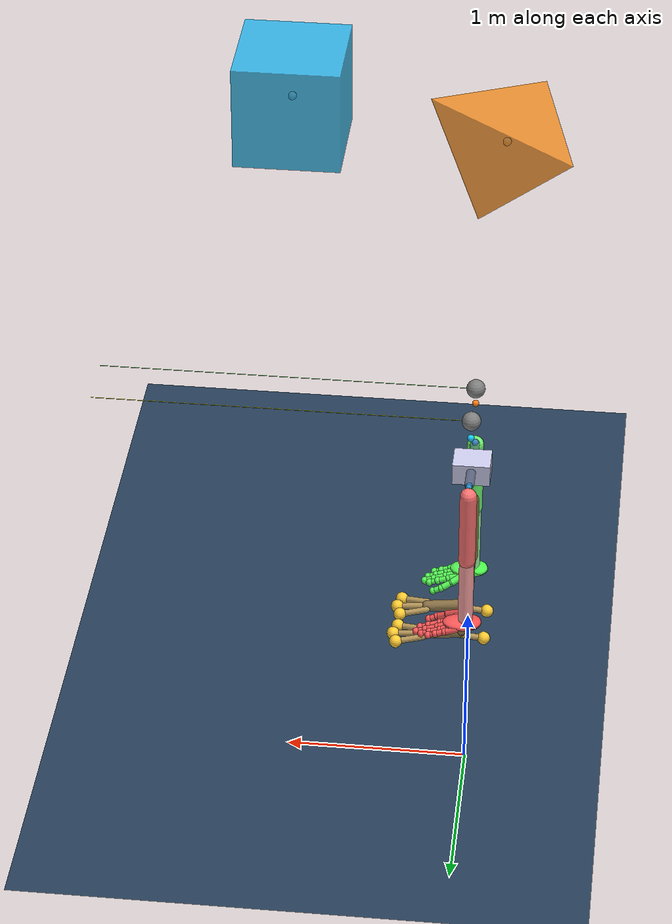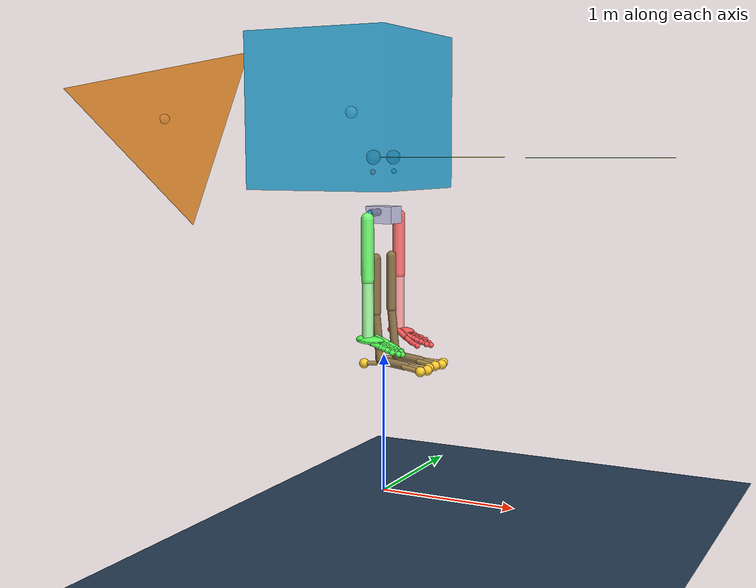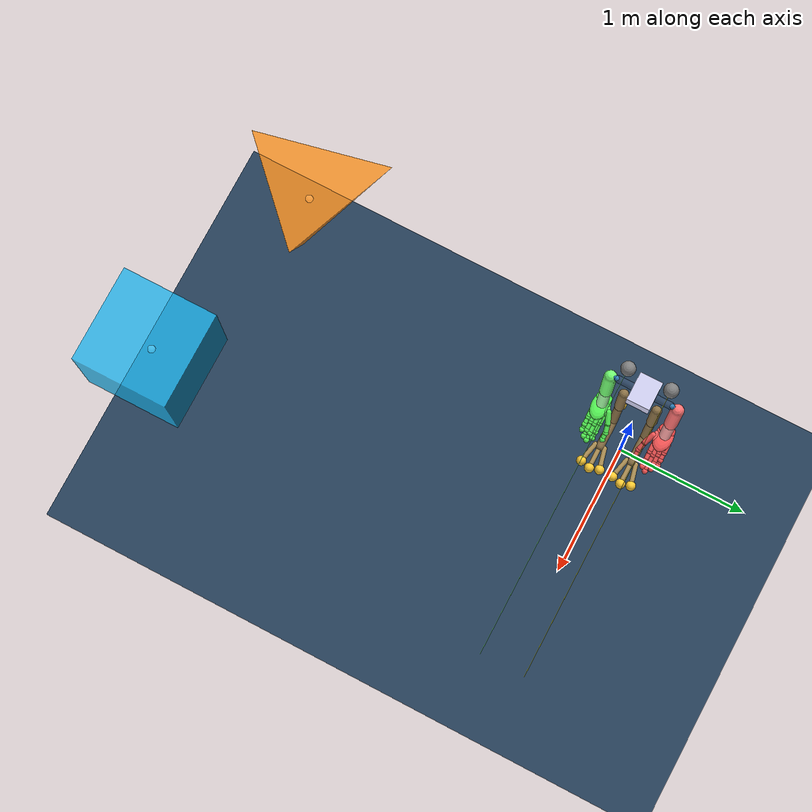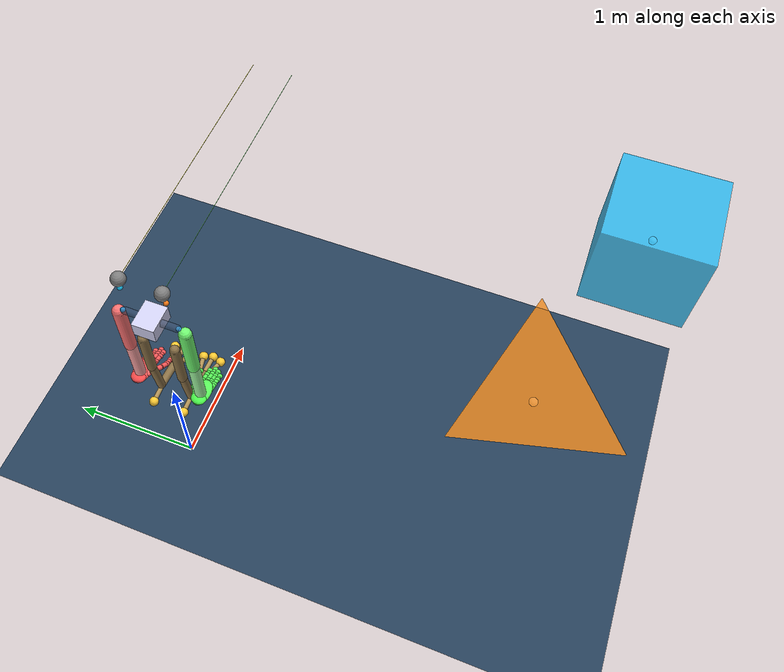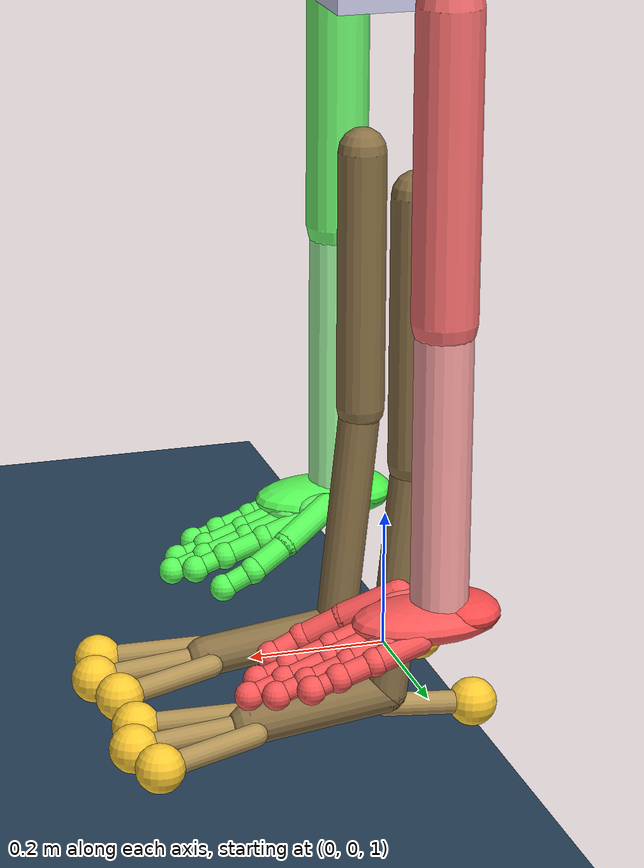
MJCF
<mujoco model="agent_scene">
  <!--include file="./common/skybox.xml"/-->
  <include file="./common/visual.xml"/>
  <include file="./common/materials.xml"/>

  <compiler angle="degree" meshdir="." texturedir="."/>
  <option timestep="0.01" gravity="0 0 -9.81" integrator="RK4"/>

  <asset>

    <!--texture name="grid" type="2d" builtin="checker" rgb1="0.2 0.2 0.2" rgb2="0.85 0.85 0.85" width="1024" height="1024"/-->
    <material name="mat_ground" texture="grid" texrepeat="40 40" reflectance="0.05" rgba="1 1 1 1"/>
    <material name="tetra_mocap_mat" rgba="0.95 0.55 0.12 0.85"/>
    <material name="cube_mocap_mat" rgba="0.12 0.72 0.95 0.82"/>
    <mesh name="tetrahedron_mesh"
          vertex="1 1 1  1 -1 -1  -1 1 -1  -1 -1 1"
          face="0 2 1  0 1 3  0 3 2  1 2 3"
          scale="0.32 0.32 0.32"/>

  </asset>

  <default>
    <geom friction="1.2 0.08 0.02" solimp="0.9 0.95 0.001" solref="0.012 1"/>
    <joint damping="0.5"/>

    <default class="visual">
        <geom material="metal" contype="0" conaffinity="0" group="2" />
    </default>
    <default class="no_visual">
        <geom group="4" />
    </default>
    <default class="collision">
        <geom contype="1" conaffinity="1" condim="3" margin="0.0015" solref="0.012 1" solimp="0.9 0.96 0.001" friction="1.2 0.08 0.02"/>
    </default>
  </default>

  <worldbody>
    <light pos="0 0 12" dir="0 0 -1"  directional="true" diffuse="0.95 0.95 0.95"/>
    <light pos="-4 -4 6" dir="1 1 -1" directional="true" diffuse="0.35 0.35 0.35"/>

    <geom name="ground" type="plane" size="20 20 0.1" material="mat_ground" class="collision"/>

    <body name="obj_tetrahedron_mocap" mocap="true" pos="0 -2.4 2.6" quat="0.92388 0.33141 0.19134 0.03813">
      <geom name="obj_tetrahedron" type="mesh" mesh="tetrahedron_mesh"
            material="tetra_mocap_mat" mass="0.8"
            contype="1" conaffinity="1" condim="3" margin="0.0015" solref="0.012 1" solimp="0.9 0.96 0.001" friction="1.2 0.08 0.02"/>
      <site name="obj_tetrahedron_center" pos="0 0 0" type="sphere" size="0.025" rgba="1 1 1 1"/>
    </body>

    <body name="obj_cube_mocap" mocap="true" pos="1.3 -2.8 2.6">
      <geom name="obj_mocap_cube" type="box" size="0.32 0.32 0.32"
            material="cube_mocap_mat" mass="0.8"
            contype="1" conaffinity="1" condim="3" margin="0.0015" solref="0.012 1" solimp="0.9 0.96 0.001" friction="1.2 0.08 0.02"/>
      <site name="obj_cube_center" pos="0 0 0" type="sphere" size="0.025" rgba="1 1 1 1"/>
    </body>
  </worldbody>

  <include file="agent.xml"/>

</mujoco>

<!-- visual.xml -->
<mujoco>
  <visual>
    <headlight ambient=".4 .4 .4" diffuse=".8 .8 .8" specular="0.1 0.1 0.1"/>
    <map znear="0.01" zfar="50.0"/>
    <quality shadowsize="2048"/>
  </visual>
</mujoco>

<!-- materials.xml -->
<!--
Common textures, colors and materials to be used throughout this suite. Some
materials such as xxx_highlight are activated on occurence of certain events,
for example receiving a positive reward.
-->
<mujoco>
  <asset>
    <texture name="grid" type="2d" builtin="checker" rgb1=".1 .2 .3" rgb2=".2 .3 .4" width="300" height="300" mark="edge" markrgb=".2 .3 .4"/>
    <material name="grid" texture="grid" texrepeat="1 1" texuniform="true" reflectance="0"/>
    <material name="self" rgba=".7 .5 .3 1"/>
    <material name="self_default" rgba=".7 .5 .3 1"/>
    <material name="self_highlight" rgba="0 .5 .3 1"/>
    <material name="effector" rgba=".7 .4 .2 1"/>
    <material name="effector_default" rgba=".7 .4 .2 1"/>
    <material name="effector_highlight" rgba="0 .5 .3 1"/>
    <material name="decoration" rgba=".3 .5 .7 1"/>
    <material name="eye" rgba="0 .2 1 1"/>
    <material name="target" rgba=".6 .3 .3 1"/>
    <material name="target_default" rgba=".6 .3 .3 1"/>
    <material name="target_highlight" rgba=".6 .3 .3 .4"/>
    <material name="site" rgba=".5 .5 .5 .3"/>

    <material name="metal"    rgba="0.7 0.7 0.7 1.0" />
    <material name="black"    rgba="0.1 0.1 0.1 1.0" />
    <material name="blue"     rgba="0.0 0.0 0.8 1.0" />
    <material name="green"    rgba="0.4 0.9 0.4 1.0" />
    <material name="gray"     rgba="0.7 0.7 0.7 1.0" />
    <material name="darkgray" rgba="0.3 0.3 0.3 1.0" />
    <material name="red"      rgba="0.8 0.0 0.0 1.0" />
    <material name="white"    rgba="1.0 1.0 1.0 1.0" />
    <material name="yellow"   rgba="0.8 0.8 0.0 1.0" />
    <material name="orange"   rgba="1.0 0.28 0.1 0.9"/>
    <material name="decor"    rgba="0.3 0.5 0.7 1.0"/>
  </asset>
</mujoco>

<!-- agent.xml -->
<mujoco model="agent">

  <worldbody>
    <body name="agent_rig" mocap="true" pos="0 0 2.0">
      <!--freejoint name="agent_rig_free"/-->
      <geom name="agent_rig_collision" type="box" size="0.18 0.12 0.10" mass="1.0" contype="1" conaffinity="1" condim="3" rgba="0.2 0.4 1.0 0.12" class="no_visual"/>
      <geom name="rig_core" type="box" pos="0 0 0" size="0.10 0.08 0.06" rgba="0.82 0.82 0.95 1" contype="0" conaffinity="0"/>

      <body name="agent_head" pos="0 0 0.2">
        <joint name="head_yaw"   type="hinge" axis="0 0 1" range="-45 45" damping="6.0" armature="0.10" frictionloss="0.05"/>
        <joint name="head_pitch" type="hinge" axis="0 1 0" range="-70 50" damping="6.0" armature="0.10" frictionloss="0.05"/>
        <joint name="head_roll"  type="hinge" axis="1 0 0" range="-70 70" damping="6.0" armature="0.10" frictionloss="0.05"/>

        <camera name="cam_left" pos="0 -0.15 0.2" xyaxes="0 -1 0 0 0 1" fovy="56.725318"/>
        <camera name="cam_right" pos="0 0.15 0.2" xyaxes="0 -1 0 0 0 1" fovy="56.725318"/>
        <geom name="obj_cam_left"  pos="0 -0.15 0.2" type="sphere" size="0.05"/>
        <geom name="obj_cam_right" pos="0  0.15 0.2" type="sphere" size="0.05"/>
        <geom name="luch_l" type="box" pos="1 -0.15 0.2" size="1 0.001 0.001" material="green" class="visual"/>
        <geom name="luch_r" type="box" pos="1  0.15 0.2" size="1 0.001 0.001" material="yellow" class="visual"/>

        <!-- Paired vestibular IMU sites: left/right inner-ear analog -->
        <site name="vestibular_left_imu_site"  pos="0.0 0.1600 0.1000" size="0.0180" type="sphere" rgba="0.1 0.8 1.0 1"/>
        <site name="vestibular_right_imu_site" pos="0.0 -0.1600 0.1000" size="0.0180" type="sphere" rgba="1.0 0.5 0.1 1"/>
      </body>

      <body name="agent_torso" pos="0 0 -0.06">
        <geom name="agent_torso_geom" type="box" size="0.20 0.13 0.18" mass="2.0" contype="1" conaffinity="1" condim="3" rgba="0.25 0.34 0.48 0.35" group="4"/>
        <geom name="agent_shoulder_bar" type="capsule" fromto="0 -0.19 0.08 0 0.19 0.08" size="0.025" mass="0.20" contype="1" conaffinity="1" condim="3" rgba="0.25 0.34 0.48 0.45"/>
        <site name="left_arm_mount_site" pos="0 -0.20 0.08" size="0.018" rgba="0.2 0.7 1 1"/>
        <site name="right_arm_mount_site" pos="0 0.20 0.08" size="0.018" rgba="0.2 0.7 1 1"/>

        <body name="left_hip_mount" pos="0 -0.1200 -0.2000">
          <joint name="left_hip_yaw" type="hinge" axis="0 0 1" range="-45 45" damping="6.0" armature="0.08" frictionloss="0.05"/>
          <joint name="left_hip_pitch" type="hinge" axis="0 1 0" range="-70 50" damping="7.0" armature="0.10" frictionloss="0.06"/>
          <!--geom name="left_hip_mount_geom" type="sphere" size="0.035" mass="0.42" contype="1" conaffinity="1" condim="3" rgba="0.55 0.45 0.28 1.0"/-->

          <body name="left_thigh" pos="0 0 -0.04">
            <geom name="left_thigh_geom" type="capsule" fromto="0 0 0 0 0 -0.3800" size="0.035" mass="0.42" contype="1" conaffinity="1" condim="3" rgba="0.55 0.45 0.28 1.0"/>

            <body name="left_shin" pos="0 0 -0.3800">
              <joint name="left_knee" type="hinge" axis="0 1 0" range="-105 -15" damping="7.0" armature="0.10" frictionloss="0.06"/>
              <geom name="left_shin_geom" type="capsule" fromto="0 0 0 0.035 0 -0.3400" size="0.03" mass="0.42" contype="1" conaffinity="1" condim="3" rgba="0.55 0.45 0.28 1.0"/>

              <body name="left_foot" pos="0.035 0 -0.3400">
                <joint name="left_ankle_pitch" type="hinge" axis="0 1 0" range="-45 55" damping="5.0" armature="0.07" frictionloss="0.04"/>
                <joint name="left_ankle_roll" type="hinge" axis="1 0 0" range="-25 25" damping="4.0" armature="0.05" frictionloss="0.035"/>
                <geom name="left_foot_geom" type="capsule" fromto="0 0 0 0.2000 0 -0.025" size="0.03" mass="0.13" contype="1" conaffinity="1" condim="3" rgba="0.55 0.45 0.28 1.0"/>

                <body name="left_toe_front_inner" pos="0.2000 -0.0350 -0.025">
                  <joint name="left_toe_front_inner_joint" type="hinge" axis="0 1 0" range="-20 65" damping="2.5" armature="0.035" frictionloss="0.02"/>
                  <geom name="left_toe_front_inner_geom" type="capsule" fromto="0 0 0 0.145 -0.0350 -0.015" size="0.017" mass="0.045" contype="1" conaffinity="1" condim="3" rgba="0.70 0.58 0.34 1.0"/>
                  <site name="left_toe_front_inner_tip" pos="0.145 -0.0350 -0.015" size="0.035" type="sphere" rgba="1 0.8 0.2 1"/>
                </body>

                <body name="left_toe_front_mid" pos="0.2000 0 -0.025">
                  <joint name="left_toe_front_mid_joint" type="hinge" axis="0 1 0" range="-20 65" damping="2.5" armature="0.035" frictionloss="0.02"/>
                  <geom name="left_toe_front_mid_geom" type="capsule" fromto="0 0 0 0.165 0 -0.015" size="0.017" mass="0.045" contype="1" conaffinity="1" condim="3" rgba="0.70 0.58 0.34 1.0"/>
                  <site name="left_toe_front_mid_tip" pos="0.165 0 -0.015" size="0.035" type="sphere" rgba="1 0.8 0.2 1"/>
                </body>

                <body name="left_toe_front_outer" pos="0.2000 0.0350 -0.025">
                  <joint name="left_toe_front_outer_joint" type="hinge" axis="0 1 0" range="-20 65" damping="2.5" armature="0.035" frictionloss="0.02"/>
                  <geom name="left_toe_front_outer_geom" type="capsule" fromto="0 0 0 0.145 0.0350 -0.015" size="0.017" mass="0.045" contype="1" conaffinity="1" condim="3" rgba="0.70 0.58 0.34 1.0"/>
                  <site name="left_toe_front_outer_tip" pos="0.145 0.0350 -0.015" size="0.035" type="sphere" rgba="1 0.8 0.2 1"/>
                </body>

                <body name="left_toe_rear" pos="0 0 -0.020">
                  <joint name="left_toe_rear_joint" type="hinge" axis="0 1 0" range="-45 45" damping="2.5" armature="0.035" frictionloss="0.02"/>
                  <geom name="left_toe_rear_geom" type="capsule" fromto="0 0 0 -0.130 0 -0.012" size="0.017" mass="0.045" contype="1" conaffinity="1" condim="3" rgba="0.70 0.58 0.34 1.0"/>
                  <site name="left_toe_rear_tip" pos="-0.130 0 -0.012" size="0.035" type="sphere" rgba="1 0.8 0.2 1"/>
                </body>
              </body>
            </body>
          </body>
        </body>

        <body name="right_hip_mount" pos="0 0.1200 -0.2000">
          <joint name="right_hip_yaw"   type="hinge" axis="0 0 1" range="-45 45" damping="6.0" armature="0.08" frictionloss="0.05"/>
          <joint name="right_hip_pitch" type="hinge" axis="0 1 0" range="-70 50" damping="7.0" armature="0.10" frictionloss="0.06"/>
          <!--geom name="right_hip_mount_geom" type="sphere" size="0.035" mass="0.42" contype="1" conaffinity="1" condim="3" rgba="0.55 0.45 0.28 1.0"/-->

          <body name="right_thigh" pos="0 0 -0.04">
            <geom name="right_thigh_geom" type="capsule" fromto="0 0 0 0 0 -0.3800" size="0.035" mass="0.42" contype="1" conaffinity="1" condim="3" rgba="0.55 0.45 0.28 1.0"/>

            <body name="right_shin" pos="0 0 -0.3800">
              <joint name="right_knee" type="hinge" axis="0 1 0" range="-105 -15" damping="7.0" armature="0.10" frictionloss="0.06"/>
              <geom name="right_shin_geom" type="capsule" fromto="0 0 0 0.035 0 -0.3400" size="0.03" mass="0.42" contype="1" conaffinity="1" condim="3" rgba="0.55 0.45 0.28 1.0"/>

              <body name="right_foot" pos="0.035 0 -0.3400">
                <joint name="right_ankle_pitch" type="hinge" axis="0 1 0" range="-45 55" damping="5.0" armature="0.07" frictionloss="0.04"/>
                <joint name="right_ankle_roll" type="hinge" axis="1 0 0" range="-25 25" damping="4.0" armature="0.05" frictionloss="0.035"/>
                <geom name="right_foot_geom" type="capsule" fromto="0 0 0 0.2000 0 -0.025" size="0.03" mass="0.13" contype="1" conaffinity="1" condim="3" rgba="0.55 0.45 0.28 1.0"/>

                <body name="right_toe_front_inner" pos="0.2000 0.0350 -0.025">
                  <joint name="right_toe_front_inner_joint" type="hinge" axis="0 1 0" range="-20 65" damping="2.5" armature="0.035" frictionloss="0.02"/>
                  <geom name="right_toe_front_inner_geom" type="capsule" fromto="0 0 0 0.145 0.0350 -0.015" size="0.017" mass="0.045" contype="1" conaffinity="1" condim="3" rgba="0.70 0.58 0.34 1.0"/>
                  <site name="right_toe_front_inner_tip" pos="0.145 0.0350 -0.015" size="0.035" type="sphere" rgba="1 0.8 0.2 1"/>
                </body>

                <body name="right_toe_front_mid" pos="0.2000 0 -0.025">
                  <joint name="right_toe_front_mid_joint" type="hinge" axis="0 1 0" range="-20 65" damping="2.5" armature="0.035" frictionloss="0.02"/>
                  <geom name="right_toe_front_mid_geom" type="capsule" fromto="0 0 0 0.165 0 -0.015" size="0.017" mass="0.045" contype="1" conaffinity="1" condim="3" rgba="0.70 0.58 0.34 1.0"/>
                  <site name="right_toe_front_mid_tip" pos="0.165 0 -0.015" size="0.035" type="sphere" rgba="1 0.8 0.2 1"/>
                </body>

                <body name="right_toe_front_outer" pos="0.2000 -0.0350 -0.025">
                  <joint name="right_toe_front_outer_joint" type="hinge" axis="0 1 0" range="-20 65" damping="2.5" armature="0.035" frictionloss="0.02"/>
                  <geom name="right_toe_front_outer_geom" type="capsule" fromto="0 0 0 0.145 -0.0350 -0.015" size="0.017" mass="0.045" contype="1" conaffinity="1" condim="3" rgba="0.70 0.58 0.34 1.0"/>
                  <site name="right_toe_front_outer_tip" pos="0.145 -0.0350 -0.015" size="0.035" type="sphere" rgba="1 0.8 0.2 1"/>
                </body>

                <body name="right_toe_rear" pos="0 0 -0.020">
                  <joint name="right_toe_rear_joint" type="hinge" axis="0 1 0" range="-45 45" damping="2.5" armature="0.035" frictionloss="0.02"/>
                  <geom name="right_toe_rear_geom" type="capsule" fromto="0 0 0 -0.130 0 -0.012" size="0.017" mass="0.045" contype="1" conaffinity="1" condim="3" rgba="0.70 0.58 0.34 1.0"/>
                  <site name="right_toe_rear_tip" pos="-0.130 0 -0.012" size="0.035" type="sphere" rgba="1 0.8 0.2 1"/>
                </body>
              </body>
            </body>
          </body>
        </body>
      </body>

      <body name="left_shoulder" pos="0.0 0.24 -0.02">
        <joint name="left_shoulder_yaw" type="hinge" axis="0 0 1"
               range="-85 85" damping="1.5" armature="0.02"/>
        <joint name="left_shoulder_pitch" type="hinge" axis="0 1 0"
               range="-70 70" damping="1.5" armature="0.02"/>

        <geom name="left_upper_arm_visual" type="capsule"
              fromto="0 0 0 0 0 -0.42" size="0.045"
              mass="0.25" rgba="1 0.45 0.45 1"
              contype="1" conaffinity="1"/>

        <body name="left_elbow" pos="0 0 -0.42">
          <joint name="left_elbow_hinge" type="hinge" axis="0 -1 0"
                 range="5 145" damping="1.2" armature="0.015"/>
          <geom name="left_forearm_visual" type="capsule"
                fromto="0 0 0 0 0 -0.40" size="0.04"
                mass="0.20" rgba="1 0.65 0.65 1"
                contype="1" conaffinity="1"/>

          <body name="left_hand_base" pos="0 0 -0.40">
            <joint name="left_palm_roll" type="hinge" axis="1 0 0" range="-35 35" damping="0.7" armature="0.006"/>
            <joint name="left_palm_pitch" type="hinge" axis="0 1 0" range="-35 35" damping="0.7" armature="0.006"/>
            <geom name="left_palm" type="ellipsoid" pos="0.018 0 -0.020" size="0.105 0.066 0.028" mass="0.110" rgba="1.0 0.35 0.35 1" contype="1" conaffinity="1" condim="3" margin="0.0015" solref="0.012 1" solimp="0.9 0.96 0.001" friction="1.2 0.08 0.02"/>
            <geom name="left_palm_heel" type="ellipsoid" pos="-0.035 0 -0.012" size="0.050 0.058 0.024" mass="0.030" rgba="0.98 0.30 0.30 1" contype="1" conaffinity="1" condim="3" margin="0.0015" solref="0.012 1" solimp="0.9 0.96 0.001" friction="1.2 0.08 0.02"/>
            <geom name="left_palm_knuckle_pad" type="ellipsoid" pos="0.074 0 -0.026" size="0.040 0.055 0.018" mass="0.022" rgba="1.0 0.42 0.42 1" contype="1" conaffinity="1" condim="3" margin="0.0015" solref="0.012 1" solimp="0.9 0.96 0.001" friction="1.2 0.08 0.02"/>
            <geom name="left_palm_thumb_pad" type="ellipsoid" pos="0.030 -0.050 -0.020" size="0.044 0.024 0.022" mass="0.018" rgba="1.0 0.40 0.40 1" contype="1" conaffinity="1" condim="3" margin="0.0015" solref="0.012 1" solimp="0.9 0.96 0.001" friction="1.2 0.08 0.02"/>
            <site name="left_hand_site" pos="0.045 0 -0.015" size="0.02" rgba="1.0 0.35 0.35 1"/>
            <site name="left_palm_center_site" pos="0.030 0 -0.040" size="0.02" rgba="1.0 0.35 0.35 1"/>

            <body name="left_thumb_mcp_body" pos="0.035 -0.070 -0.010">
              <joint name="left_thumb_mcp" type="hinge" axis="0 1 0" range="-20 90" damping="0.55" armature="0.003"/>
              <joint name="left_thumb_mcp_yaw" type="hinge" axis="0 0 1" range="-10 10" damping="0.55" armature="0.003"/>
              <geom name="left_thumb_proximal" type="capsule" fromto="0 0 0 0.070 -0.030 -0.039" size="0.020" mass="0.025" rgba="1.0 0.35 0.35 1" contype="1" conaffinity="1" condim="3" margin="0.0015" solref="0.012 1" solimp="0.9 0.96 0.001" friction="1.2 0.08 0.02"/>
              <site name="left_thumb_mcp_site" pos="0 0 0" size="0.005" rgba="1.0 0.35 0.35 1"/>
              <body name="left_thumb_pip_body" pos="0.070 -0.030 -0.039">
                <joint name="left_thumb_pip" type="hinge" axis="0 1 0" range="0 100" damping="0.45" armature="0.002"/>
                <geom name="left_thumb_middle" type="capsule" fromto="0 0 0 0.055 -0.015 -0.030" size="0.018" mass="0.020" rgba="1.0 0.35 0.35 1" contype="1" conaffinity="1" condim="3" margin="0.0015" solref="0.012 1" solimp="0.9 0.96 0.001" friction="1.2 0.08 0.02"/>
                <site name="left_thumb_pip_site" pos="0 0 0" size="0.02" rgba="1.0 0.35 0.35 1"/>
                <body name="left_thumb_dip_body" pos="0.055 -0.015 -0.030">
                  <joint name="left_thumb_dip" type="hinge" axis="0 1 0" range="0 80" damping="0.35" armature="0.001"/>
                  <geom name="left_thumb_distal" type="capsule" fromto="0 0 0 0.045 0 -0.022" size="0.016" mass="0.015" rgba="1.0 0.35 0.35 1" contype="1" conaffinity="1" condim="3" margin="0.0015" solref="0.012 1" solimp="0.9 0.96 0.001" friction="1.2 0.08 0.02"/>
                  <site name="left_thumb_dip_site" pos="0 0 0" size="0.02" rgba="1.0 0.35 0.35 1"/>
                  <site name="left_thumb_tip_site" pos="0.045 0 -0.022" size="0.02" rgba="1.0 0.35 0.35 1"/>
                </body>
              </body>
            </body>

            <body name="left_index_mcp_body" pos="0.060 -0.040 -0.035">
              <joint name="left_index_mcp" type="hinge" axis="0 1 0" range="-20 90" damping="0.55" armature="0.003"/>
              <joint name="left_index_mcp_yaw" type="hinge" axis="0 0 1" range="-10 10" damping="0.55" armature="0.003"/>
              <geom name="left_index_proximal" type="capsule" fromto="0 0 0 0.080 0 -0.028" size="0.018" mass="0.025" rgba="1.0 0.35 0.35 1" contype="1" conaffinity="1" condim="3" margin="0.0015" solref="0.012 1" solimp="0.9 0.96 0.001" friction="1.2 0.08 0.02"/>
              <site name="left_index_mcp_site" pos="0 0 0" size="0.005" rgba="1.0 0.35 0.35 1"/>
              <body name="left_index_pip_body" pos="0.080 0 -0.028">
                <joint name="left_index_pip" type="hinge" axis="0 1 0" range="0 100" damping="0.45" armature="0.002"/>
                <geom name="left_index_middle" type="capsule" fromto="0 0 0 0.060 0 -0.021" size="0.016" mass="0.020" rgba="1.0 0.35 0.35 1" contype="1" conaffinity="1" condim="3" margin="0.0015" solref="0.012 1" solimp="0.9 0.96 0.001" friction="1.2 0.08 0.02"/>
                <site name="left_index_pip_site" pos="0 0 0" size="0.02" rgba="1.0 0.35 0.35 1"/>
                <body name="left_index_dip_body" pos="0.060 0 -0.021">
                  <joint name="left_index_dip" type="hinge" axis="0 1 0" range="0 80" damping="0.35" armature="0.001"/>
                  <geom name="left_index_distal" type="capsule" fromto="0 0 0 0.045 0 -0.016" size="0.014" mass="0.015" rgba="1.0 0.35 0.35 1" contype="1" conaffinity="1" condim="3" margin="0.0015" solref="0.012 1" solimp="0.9 0.96 0.001" friction="1.2 0.08 0.02"/>
                  <site name="left_index_dip_site" pos="0 0 0" size="0.02" rgba="1.0 0.35 0.35 1"/>
                  <site name="left_index_tip_site" pos="0.045 0 -0.016" size="0.02" rgba="1.0 0.35 0.35 1"/>
                </body>
              </body>
            </body>

            <body name="left_middle_mcp_body" pos="0.065 -0.010 -0.038">
              <joint name="left_middle_mcp" type="hinge" axis="0 1 0" range="-20 90" damping="0.55" armature="0.003"/>
              <joint name="left_middle_mcp_yaw" type="hinge" axis="0 0 1" range="-10 10" damping="0.55" armature="0.003"/>
              <geom name="left_middle_proximal" type="capsule" fromto="0 0 0 0.085 0 -0.030" size="0.018" mass="0.025" rgba="1.0 0.35 0.35 1" contype="1" conaffinity="1" condim="3" margin="0.0015" solref="0.012 1" solimp="0.9 0.96 0.001" friction="1.2 0.08 0.02"/>
              <site name="left_middle_mcp_site" pos="0 0 0" size="0.005" rgba="1.0 0.35 0.35 1"/>
              <body name="left_middle_pip_body" pos="0.085 0 -0.030">
                <joint name="left_middle_pip" type="hinge" axis="0 1 0" range="0 100" damping="0.45" armature="0.002"/>
                <geom name="left_middle_middle" type="capsule" fromto="0 0 0 0.065 0 -0.023" size="0.016" mass="0.020" rgba="1.0 0.35 0.35 1" contype="1" conaffinity="1" condim="3" margin="0.0015" solref="0.012 1" solimp="0.9 0.96 0.001" friction="1.2 0.08 0.02"/>
                <site name="left_middle_pip_site" pos="0 0 0" size="0.02" rgba="1.0 0.35 0.35 1"/>
                <body name="left_middle_dip_body" pos="0.065 0 -0.023">
                  <joint name="left_middle_dip" type="hinge" axis="0 1 0" range="0 80" damping="0.35" armature="0.001"/>
                  <geom name="left_middle_distal" type="capsule" fromto="0 0 0 0.050 0 -0.017" size="0.014" mass="0.015" rgba="1.0 0.35 0.35 1" contype="1" conaffinity="1" condim="3" margin="0.0015" solref="0.012 1" solimp="0.9 0.96 0.001" friction="1.2 0.08 0.02"/>
                  <site name="left_middle_dip_site" pos="0 0 0" size="0.02" rgba="1.0 0.35 0.35 1"/>
                  <site name="left_middle_tip_site" pos="0.050 0 -0.017" size="0.02" rgba="1.0 0.35 0.35 1"/>
                </body>
              </body>
            </body>

            <body name="left_ring_mcp_body" pos="0.058 0.020 -0.036">
              <joint name="left_ring_mcp" type="hinge" axis="0 1 0" range="-20 90" damping="0.55" armature="0.003"/>
              <joint name="left_ring_mcp_yaw" type="hinge" axis="0 0 1" range="-10 10" damping="0.55" armature="0.003"/>
              <geom name="left_ring_proximal" type="capsule" fromto="0 0 0 0.076 0 -0.027" size="0.018" mass="0.025" rgba="1.0 0.35 0.35 1" contype="1" conaffinity="1" condim="3" margin="0.0015" solref="0.012 1" solimp="0.9 0.96 0.001" friction="1.2 0.08 0.02"/>
              <site name="left_ring_mcp_site" pos="0 0 0" size="0.005" rgba="1.0 0.35 0.35 1"/>
              <body name="left_ring_pip_body" pos="0.076 0 -0.027">
                <joint name="left_ring_pip" type="hinge" axis="0 1 0" range="0 100" damping="0.45" armature="0.002"/>
                <geom name="left_ring_middle" type="capsule" fromto="0 0 0 0.058 0 -0.020" size="0.016" mass="0.020" rgba="1.0 0.35 0.35 1" contype="1" conaffinity="1" condim="3" margin="0.0015" solref="0.012 1" solimp="0.9 0.96 0.001" friction="1.2 0.08 0.02"/>
                <site name="left_ring_pip_site" pos="0 0 0" size="0.02" rgba="1.0 0.35 0.35 1"/>
                <body name="left_ring_dip_body" pos="0.058 0 -0.020">
                  <joint name="left_ring_dip" type="hinge" axis="0 1 0" range="0 80" damping="0.35" armature="0.001"/>
                  <geom name="left_ring_distal" type="capsule" fromto="0 0 0 0.043 0 -0.015" size="0.014" mass="0.015" rgba="1.0 0.35 0.35 1" contype="1" conaffinity="1" condim="3" margin="0.0015" solref="0.012 1" solimp="0.9 0.96 0.001" friction="1.2 0.08 0.02"/>
                  <site name="left_ring_dip_site" pos="0 0 0" size="0.02" rgba="1.0 0.35 0.35 1"/>
                  <site name="left_ring_tip_site" pos="0.043 0 -0.015" size="0.02" rgba="1.0 0.35 0.35 1"/>
                </body>
              </body>
            </body>

            <body name="left_little_mcp_body" pos="0.045 0.050 -0.030">
              <joint name="left_little_mcp" type="hinge" axis="0 1 0" range="-20 90" damping="0.55" armature="0.003"/>
              <joint name="left_little_mcp_yaw" type="hinge" axis="0 0 1" range="-10 10" damping="0.55" armature="0.003"/>
              <geom name="left_little_proximal" type="capsule" fromto="0 0 0 0.062 0 -0.022" size="0.018" mass="0.025" rgba="1.0 0.35 0.35 1" contype="1" conaffinity="1" condim="3" margin="0.0015" solref="0.012 1" solimp="0.9 0.96 0.001" friction="1.2 0.08 0.02"/>
              <site name="left_little_mcp_site" pos="0 0 0" size="0.005" rgba="1.0 0.35 0.35 1"/>
              <body name="left_little_pip_body" pos="0.062 0 -0.022">
                <joint name="left_little_pip" type="hinge" axis="0 1 0" range="0 100" damping="0.45" armature="0.002"/>
                <geom name="left_little_middle" type="capsule" fromto="0 0 0 0.050 0 -0.017" size="0.016" mass="0.020" rgba="1.0 0.35 0.35 1" contype="1" conaffinity="1" condim="3" margin="0.0015" solref="0.012 1" solimp="0.9 0.96 0.001" friction="1.2 0.08 0.02"/>
                <site name="left_little_pip_site" pos="0 0 0" size="0.02" rgba="1.0 0.35 0.35 1"/>
                <body name="left_little_dip_body" pos="0.050 0 -0.017">
                  <joint name="left_little_dip" type="hinge" axis="0 1 0" range="0 80" damping="0.35" armature="0.001"/>
                  <geom name="left_little_distal" type="capsule" fromto="0 0 0 0.038 0 -0.013" size="0.014" mass="0.015" rgba="1.0 0.35 0.35 1" contype="1" conaffinity="1" condim="3" margin="0.0015" solref="0.012 1" solimp="0.9 0.96 0.001" friction="1.2 0.08 0.02"/>
                  <site name="left_little_dip_site" pos="0 0 0" size="0.02" rgba="1.0 0.35 0.35 1"/>
                  <site name="left_little_tip_site" pos="0.038 0 -0.013" size="0.02" rgba="1.0 0.35 0.35 1"/>
                </body>
              </body>
            </body>
          </body>

        </body>
      </body>

      <body name="right_shoulder" pos="0.0 -0.24 -0.02">
        <joint name="right_shoulder_yaw" type="hinge" axis="0 0 1"
               range="-85 85" damping="1.5" armature="0.02"/>
        <joint name="right_shoulder_pitch" type="hinge" axis="0 1 0"
               range="-70 70" damping="1.5" armature="0.02"/>

        <geom name="right_upper_arm_visual" type="capsule"
              fromto="0 0 0 0 0 -0.42" size="0.045"
              mass="0.25" rgba="0.45 1 0.45 1"
              contype="1" conaffinity="1"/>

        <body name="right_elbow" pos="0 0 -0.42">
          <joint name="right_elbow_hinge" type="hinge" axis="0 -1 0"
                 range="5 145" damping="1.2" armature="0.015"/>
          <geom name="right_forearm_visual" type="capsule"
                fromto="0 0 0 0 0 -0.40" size="0.04"
                mass="0.20" rgba="0.65 1 0.65 1"
                contype="1" conaffinity="1"/>

          <body name="right_hand_base" pos="0 0 -0.40">
            <joint name="right_palm_roll" type="hinge" axis="1 0 0" range="-35 35" damping="0.7" armature="0.006"/>
            <joint name="right_palm_pitch" type="hinge" axis="0 1 0" range="-35 35" damping="0.7" armature="0.006"/>
            <geom name="right_palm" type="ellipsoid" pos="0.018 0 -0.020" size="0.105 0.066 0.028" mass="0.110" rgba="0.35 1.0 0.35 1" contype="1" conaffinity="1" condim="3" margin="0.0015" solref="0.012 1" solimp="0.9 0.96 0.001" friction="1.2 0.08 0.02"/>
            <geom name="right_palm_heel" type="ellipsoid" pos="-0.035 0 -0.012" size="0.050 0.058 0.024" mass="0.030" rgba="0.30 0.98 0.30 1" contype="1" conaffinity="1" condim="3" margin="0.0015" solref="0.012 1" solimp="0.9 0.96 0.001" friction="1.2 0.08 0.02"/>
            <geom name="right_palm_knuckle_pad" type="ellipsoid" pos="0.074 0 -0.026" size="0.040 0.055 0.018" mass="0.022" rgba="0.42 1.0 0.42 1" contype="1" conaffinity="1" condim="3" margin="0.0015" solref="0.012 1" solimp="0.9 0.96 0.001" friction="1.2 0.08 0.02"/>
            <geom name="right_palm_thumb_pad" type="ellipsoid" pos="0.030 0.050 -0.020" size="0.044 0.024 0.022" mass="0.018" rgba="0.40 1.0 0.40 1" contype="1" conaffinity="1" condim="3" margin="0.0015" solref="0.012 1" solimp="0.9 0.96 0.001" friction="1.2 0.08 0.02"/>
            <site name="right_hand_site" pos="0.045 0 -0.015" size="0.02" rgba="0.35 1.0 0.35 1"/>
            <site name="right_palm_center_site" pos="0.030 0 -0.040" size="0.02" rgba="0.35 1.0 0.35 1"/>

            <body name="right_thumb_mcp_body" pos="0.035 0.070 -0.010">
              <joint name="right_thumb_mcp" type="hinge" axis="0 1 0" range="-20 90" damping="0.55" armature="0.003"/>
              <joint name="right_thumb_mcp_yaw" type="hinge" axis="0 0 1" range="-10 10" damping="0.55" armature="0.003"/>
              <geom name="right_thumb_proximal" type="capsule" fromto="0 0 0 0.070 0.030 -0.039" size="0.020" mass="0.025" rgba="0.35 1.0 0.35 1" contype="1" conaffinity="1" condim="3" margin="0.0015" solref="0.012 1" solimp="0.9 0.96 0.001" friction="1.2 0.08 0.02"/>
              <site name="right_thumb_mcp_site" pos="0 0 0" size="0.005" rgba="0.35 1.0 0.35 1"/>
              <body name="right_thumb_pip_body" pos="0.070 0.030 -0.039">
                <joint name="right_thumb_pip" type="hinge" axis="0 1 0" range="0 100" damping="0.45" armature="0.002"/>
                <geom name="right_thumb_middle" type="capsule" fromto="0 0 0 0.055 0.015 -0.030" size="0.018" mass="0.020" rgba="0.35 1.0 0.35 1" contype="1" conaffinity="1" condim="3" margin="0.0015" solref="0.012 1" solimp="0.9 0.96 0.001" friction="1.2 0.08 0.02"/>
                <site name="right_thumb_pip_site" pos="0 0 0" size="0.02" rgba="0.35 1.0 0.35 1"/>
                <body name="right_thumb_dip_body" pos="0.055 0.015 -0.030">
                  <joint name="right_thumb_dip" type="hinge" axis="0 1 0" range="0 80" damping="0.35" armature="0.001"/>
                  <geom name="right_thumb_distal" type="capsule" fromto="0 0 0 0.045 0 -0.022" size="0.016" mass="0.015" rgba="0.35 1.0 0.35 1" contype="1" conaffinity="1" condim="3" margin="0.0015" solref="0.012 1" solimp="0.9 0.96 0.001" friction="1.2 0.08 0.02"/>
                  <site name="right_thumb_dip_site" pos="0 0 0" size="0.02" rgba="0.35 1.0 0.35 1"/>
                  <site name="right_thumb_tip_site" pos="0.045 0 -0.022" size="0.02" rgba="0.35 1.0 0.35 1"/>
                </body>
              </body>
            </body>

            <body name="right_index_mcp_body" pos="0.045 0.050 -0.030">
              <joint name="right_index_mcp" type="hinge" axis="0 1 0" range="-20 90" damping="0.55" armature="0.003"/>
              <joint name="right_index_mcp_yaw" type="hinge" axis="0 0 1" range="-10 10" damping="0.55" armature="0.003"/>
              <geom name="right_index_proximal" type="capsule" fromto="0 0 0 0.080 0 -0.028" size="0.018" mass="0.025" rgba="0.35 1.0 0.35 1" contype="1" conaffinity="1" condim="3" margin="0.0015" solref="0.012 1" solimp="0.9 0.96 0.001" friction="1.2 0.08 0.02"/>
              <site name="right_index_mcp_site" pos="0 0 0" size="0.005" rgba="0.35 1.0 0.35 1"/>
              <body name="right_index_pip_body" pos="0.080 0 -0.028">
                <joint name="right_index_pip" type="hinge" axis="0 1 0" range="0 100" damping="0.45" armature="0.002"/>
                <geom name="right_index_middle" type="capsule" fromto="0 0 0 0.060 0 -0.021" size="0.016" mass="0.020" rgba="0.35 1.0 0.35 1" contype="1" conaffinity="1" condim="3" margin="0.0015" solref="0.012 1" solimp="0.9 0.96 0.001" friction="1.2 0.08 0.02"/>
                <site name="right_index_pip_site" pos="0 0 0" size="0.02" rgba="0.35 1.0 0.35 1"/>
                <body name="right_index_dip_body" pos="0.060 0 -0.021">
                  <joint name="right_index_dip" type="hinge" axis="0 1 0" range="0 80" damping="0.35" armature="0.001"/>
                  <geom name="right_index_distal" type="capsule" fromto="0 0 0 0.045 0 -0.016" size="0.014" mass="0.015" rgba="0.35 1.0 0.35 1" contype="1" conaffinity="1" condim="3" margin="0.0015" solref="0.012 1" solimp="0.9 0.96 0.001" friction="1.2 0.08 0.02"/>
                  <site name="right_index_dip_site" pos="0 0 0" size="0.02" rgba="0.35 1.0 0.35 1"/>
                  <site name="right_index_tip_site" pos="0.045 0 -0.016" size="0.02" rgba="0.35 1.0 0.35 1"/>
                </body>
              </body>
            </body>

            <body name="right_middle_mcp_body" pos="0.058 0.020 -0.036">
              <joint name="right_middle_mcp" type="hinge" axis="0 1 0" range="-20 90" damping="0.55" armature="0.003"/>
              <joint name="right_middle_mcp_yaw" type="hinge" axis="0 0 1" range="-10 10" damping="0.55" armature="0.003"/>
              <geom name="right_middle_proximal" type="capsule" fromto="0 0 0 0.085 0 -0.030" size="0.018" mass="0.025" rgba="0.35 1.0 0.35 1" contype="1" conaffinity="1" condim="3" margin="0.0015" solref="0.012 1" solimp="0.9 0.96 0.001" friction="1.2 0.08 0.02"/>
              <site name="right_middle_mcp_site" pos="0 0 0" size="0.005" rgba="0.35 1.0 0.35 1"/>
              <body name="right_middle_pip_body" pos="0.085 0 -0.030">
                <joint name="right_middle_pip" type="hinge" axis="0 1 0" range="0 100" damping="0.45" armature="0.002"/>
                <geom name="right_middle_middle" type="capsule" fromto="0 0 0 0.065 0 -0.023" size="0.016" mass="0.020" rgba="0.35 1.0 0.35 1" contype="1" conaffinity="1" condim="3" margin="0.0015" solref="0.012 1" solimp="0.9 0.96 0.001" friction="1.2 0.08 0.02"/>
                <site name="right_middle_pip_site" pos="0 0 0" size="0.02" rgba="0.35 1.0 0.35 1"/>
                <body name="right_middle_dip_body" pos="0.065 0 -0.023">
                  <joint name="right_middle_dip" type="hinge" axis="0 1 0" range="0 80" damping="0.35" armature="0.001"/>
                  <geom name="right_middle_distal" type="capsule" fromto="0 0 0 0.050 0 -0.017" size="0.014" mass="0.015" rgba="0.35 1.0 0.35 1" contype="1" conaffinity="1" condim="3" margin="0.0015" solref="0.012 1" solimp="0.9 0.96 0.001" friction="1.2 0.08 0.02"/>
                  <site name="right_middle_dip_site" pos="0 0 0" size="0.02" rgba="0.35 1.0 0.35 1"/>
                  <site name="right_middle_tip_site" pos="0.050 0 -0.017" size="0.02" rgba="0.35 1.0 0.35 1"/>
                </body>
              </body>
            </body>

            <body name="right_ring_mcp_body" pos="0.065 -0.010 -0.038">
              <joint name="right_ring_mcp" type="hinge" axis="0 1 0" range="-20 90" damping="0.55" armature="0.003"/>
              <joint name="right_ring_mcp_yaw" type="hinge" axis="0 0 1" range="-10 10" damping="0.55" armature="0.003"/>
              <geom name="right_ring_proximal" type="capsule" fromto="0 0 0 0.076 0 -0.027" size="0.018" mass="0.025" rgba="0.35 1.0 0.35 1" contype="1" conaffinity="1" condim="3" margin="0.0015" solref="0.012 1" solimp="0.9 0.96 0.001" friction="1.2 0.08 0.02"/>
              <site name="right_ring_mcp_site" pos="0 0 0" size="0.005" rgba="0.35 1.0 0.35 1"/>
              <body name="right_ring_pip_body" pos="0.076 0 -0.027">
                <joint name="right_ring_pip" type="hinge" axis="0 1 0" range="0 100" damping="0.45" armature="0.002"/>
                <geom name="right_ring_middle" type="capsule" fromto="0 0 0 0.058 0 -0.020" size="0.016" mass="0.020" rgba="0.35 1.0 0.35 1" contype="1" conaffinity="1" condim="3" margin="0.0015" solref="0.012 1" solimp="0.9 0.96 0.001" friction="1.2 0.08 0.02"/>
                <site name="right_ring_pip_site" pos="0 0 0" size="0.02" rgba="0.35 1.0 0.35 1"/>
                <body name="right_ring_dip_body" pos="0.058 0 -0.020">
                  <joint name="right_ring_dip" type="hinge" axis="0 1 0" range="0 80" damping="0.35" armature="0.001"/>
                  <geom name="right_ring_distal" type="capsule" fromto="0 0 0 0.043 0 -0.015" size="0.014" mass="0.015" rgba="0.35 1.0 0.35 1" contype="1" conaffinity="1" condim="3" margin="0.0015" solref="0.012 1" solimp="0.9 0.96 0.001" friction="1.2 0.08 0.02"/>
                  <site name="right_ring_dip_site" pos="0 0 0" size="0.02" rgba="0.35 1.0 0.35 1"/>
                  <site name="right_ring_tip_site" pos="0.043 0 -0.015" size="0.02" rgba="0.35 1.0 0.35 1"/>
                </body>
              </body>
            </body>

            <body name="right_little_mcp_body" pos="0.060 -0.040 -0.035">
              <joint name="right_little_mcp" type="hinge" axis="0 1 0" range="-20 90" damping="0.55" armature="0.003"/>
              <joint name="right_little_mcp_yaw" type="hinge" axis="0 0 1" range="-10 10" damping="0.55" armature="0.003"/>
              <geom name="right_little_proximal" type="capsule" fromto="0 0 0 0.062 0 -0.022" size="0.018" mass="0.025" rgba="0.35 1.0 0.35 1" contype="1" conaffinity="1" condim="3" margin="0.0015" solref="0.012 1" solimp="0.9 0.96 0.001" friction="1.2 0.08 0.02"/>
              <site name="right_little_mcp_site" pos="0 0 0" size="0.005" rgba="0.35 1.0 0.35 1"/>
              <body name="right_little_pip_body" pos="0.062 0 -0.022">
                <joint name="right_little_pip" type="hinge" axis="0 1 0" range="0 100" damping="0.45" armature="0.002"/>
                <geom name="right_little_middle" type="capsule" fromto="0 0 0 0.050 0 -0.017" size="0.016" mass="0.020" rgba="0.35 1.0 0.35 1" contype="1" conaffinity="1" condim="3" margin="0.0015" solref="0.012 1" solimp="0.9 0.96 0.001" friction="1.2 0.08 0.02"/>
                <site name="right_little_pip_site" pos="0 0 0" size="0.02" rgba="0.35 1.0 0.35 1"/>
                <body name="right_little_dip_body" pos="0.050 0 -0.017">
                  <joint name="right_little_dip" type="hinge" axis="0 1 0" range="0 80" damping="0.35" armature="0.001"/>
                  <geom name="right_little_distal" type="capsule" fromto="0 0 0 0.038 0 -0.013" size="0.014" mass="0.015" rgba="0.35 1.0 0.35 1" contype="1" conaffinity="1" condim="3" margin="0.0015" solref="0.012 1" solimp="0.9 0.96 0.001" friction="1.2 0.08 0.02"/>
                  <site name="right_little_dip_site" pos="0 0 0" size="0.02" rgba="0.35 1.0 0.35 1"/>
                  <site name="right_little_tip_site" pos="0.038 0 -0.013" size="0.02" rgba="0.35 1.0 0.35 1"/>
                </body>
              </body>
            </body>
          </body>

        </body>
      </body>
    </body>
  </worldbody>

  <sensor>
    <touch name="left_palm_touch" site="left_palm_center_site"/>
    <touch name="left_thumb_mcp_touch" site="left_thumb_mcp_site"/>
    <touch name="left_thumb_pip_touch" site="left_thumb_pip_site"/>
    <touch name="left_thumb_dip_touch" site="left_thumb_dip_site"/>
    <touch name="left_thumb_tip_touch" site="left_thumb_tip_site"/>
    <touch name="left_index_mcp_touch" site="left_index_mcp_site"/>
    <touch name="left_index_pip_touch" site="left_index_pip_site"/>
    <touch name="left_index_dip_touch" site="left_index_dip_site"/>
    <touch name="left_index_tip_touch" site="left_index_tip_site"/>
    <touch name="left_middle_mcp_touch" site="left_middle_mcp_site"/>
    <touch name="left_middle_pip_touch" site="left_middle_pip_site"/>
    <touch name="left_middle_dip_touch" site="left_middle_dip_site"/>
    <touch name="left_middle_tip_touch" site="left_middle_tip_site"/>
    <touch name="left_ring_mcp_touch" site="left_ring_mcp_site"/>
    <touch name="left_ring_pip_touch" site="left_ring_pip_site"/>
    <touch name="left_ring_dip_touch" site="left_ring_dip_site"/>
    <touch name="left_ring_tip_touch" site="left_ring_tip_site"/>
    <touch name="left_little_mcp_touch" site="left_little_mcp_site"/>
    <touch name="left_little_pip_touch" site="left_little_pip_site"/>
    <touch name="left_little_dip_touch" site="left_little_dip_site"/>
    <touch name="left_little_tip_touch" site="left_little_tip_site"/>
    <touch name="right_palm_touch" site="right_palm_center_site"/>
    <touch name="right_thumb_mcp_touch" site="right_thumb_mcp_site"/>
    <touch name="right_thumb_pip_touch" site="right_thumb_pip_site"/>
    <touch name="right_thumb_dip_touch" site="right_thumb_dip_site"/>
    <touch name="right_thumb_tip_touch" site="right_thumb_tip_site"/>
    <touch name="right_index_mcp_touch" site="right_index_mcp_site"/>
    <touch name="right_index_pip_touch" site="right_index_pip_site"/>
    <touch name="right_index_dip_touch" site="right_index_dip_site"/>
    <touch name="right_index_tip_touch" site="right_index_tip_site"/>
    <touch name="right_middle_mcp_touch" site="right_middle_mcp_site"/>
    <touch name="right_middle_pip_touch" site="right_middle_pip_site"/>
    <touch name="right_middle_dip_touch" site="right_middle_dip_site"/>
    <touch name="right_middle_tip_touch" site="right_middle_tip_site"/>
    <touch name="right_ring_mcp_touch" site="right_ring_mcp_site"/>
    <touch name="right_ring_pip_touch" site="right_ring_pip_site"/>
    <touch name="right_ring_dip_touch" site="right_ring_dip_site"/>
    <touch name="right_ring_tip_touch" site="right_ring_tip_site"/>
    <touch name="right_little_mcp_touch" site="right_little_mcp_site"/>
    <touch name="right_little_pip_touch" site="right_little_pip_site"/>
    <touch name="right_little_dip_touch" site="right_little_dip_site"/>
    <touch name="right_little_tip_touch" site="right_little_tip_site"/>
    <touch name="touch_left_toe_front_inner_tip"  site="left_toe_front_inner_tip"/>
    <touch name="touch_left_toe_front_mid_tip"    site="left_toe_front_mid_tip"/>
    <touch name="touch_left_toe_front_outer_tip"  site="left_toe_front_outer_tip"/>
    <touch name="touch_left_toe_rear_tip"         site="left_toe_rear_tip"/>
    <touch name="touch_right_toe_front_inner_tip" site="right_toe_front_inner_tip"/>
    <touch name="touch_right_toe_front_mid_tip"   site="right_toe_front_mid_tip"/>
    <touch name="touch_right_toe_front_outer_tip" site="right_toe_front_outer_tip"/>
    <touch name="touch_right_toe_rear_tip"        site="right_toe_rear_tip"/>
    <gyro name="vestibular_left_gyro" site="vestibular_left_imu_site"/>
    <accelerometer name="vestibular_left_accel" site="vestibular_left_imu_site"/>
    <gyro name="vestibular_right_gyro" site="vestibular_right_imu_site"/>
    <accelerometer name="vestibular_right_accel" site="vestibular_right_imu_site"/>
  </sensor>

  <actuator>
    <position name="act_head_yaw"   joint="head_yaw"   kp="60" ctrlrange="-1.48353 1.48353" forcerange="-12 12"/>
    <position name="act_head_pitch" joint="head_pitch" kp="60" ctrlrange="-1.22173 1.22173" forcerange="-12 12"/>
    <position name="act_head_roll"  joint="head_roll"  kp="60" ctrlrange="-1.22173 1.22173" forcerange="-12 12"/>

    <position name="act_left_shoulder_yaw" joint="left_shoulder_yaw" kp="60" ctrlrange="-1.48353 1.48353" forcerange="-120 120"/>
    <position name="act_left_shoulder_pitch" joint="left_shoulder_pitch" kp="60" ctrlrange="-1.22173 1.22173" forcerange="-120 120"/>
    <position name="act_left_elbow" joint="left_elbow_hinge" kp="55" ctrlrange="0.0872665 2.53073" forcerange="-100 100"/>

    <position name="act_right_shoulder_yaw" joint="right_shoulder_yaw" kp="60" ctrlrange="-1.48353 1.48353" forcerange="-120 120"/>
    <position name="act_right_shoulder_pitch" joint="right_shoulder_pitch" kp="60" ctrlrange="-1.22173 1.22173" forcerange="-120 120"/>
    <position name="act_right_elbow" joint="right_elbow_hinge" kp="55" ctrlrange="0.0872665 2.53073" forcerange="-100 100"/>

    <position name="act_left_palm_roll" joint="left_palm_roll" kp="80" ctrlrange="-0.610865 0.610865" forcerange="-50 50"/>
    <position name="act_left_palm_pitch" joint="left_palm_pitch" kp="80" ctrlrange="-0.610865 0.610865" forcerange="-50 50"/>
    <position name="act_left_thumb_mcp" joint="left_thumb_mcp" kp="45" ctrlrange="-0.349066 1.5708" forcerange="-25 25"/>
    <position name="act_left_thumb_mcp_yaw" joint="left_thumb_mcp_yaw" kp="45" ctrlrange="-0.349066 1.5708" forcerange="-25 25"/>
    <position name="act_left_thumb_pip" joint="left_thumb_pip" kp="38" ctrlrange="0 1.74533" forcerange="-22 22"/>
    <position name="act_left_thumb_dip" joint="left_thumb_dip" kp="30" ctrlrange="0 1.39626" forcerange="-18 18"/>
    <position name="act_left_index_mcp" joint="left_index_mcp" kp="45" ctrlrange="-0.349066 1.5708" forcerange="-25 25"/>
    <position name="act_left_index_mcp_yaw" joint="left_index_mcp_yaw" kp="45" ctrlrange="-0.349066 1.5708" forcerange="-25 25"/>
    <position name="act_left_index_pip" joint="left_index_pip" kp="38" ctrlrange="0 1.74533" forcerange="-22 22"/>
    <position name="act_left_index_dip" joint="left_index_dip" kp="30" ctrlrange="0 1.39626" forcerange="-18 18"/>
    <position name="act_left_middle_mcp" joint="left_middle_mcp" kp="45" ctrlrange="-0.349066 1.5708" forcerange="-25 25"/>
    <position name="act_left_middle_mcp_yaw" joint="left_middle_mcp_yaw" kp="45" ctrlrange="-0.349066 1.5708" forcerange="-25 25"/>
    <position name="act_left_middle_pip" joint="left_middle_pip" kp="38" ctrlrange="0 1.74533" forcerange="-22 22"/>
    <position name="act_left_middle_dip" joint="left_middle_dip" kp="30" ctrlrange="0 1.39626" forcerange="-18 18"/>
    <position name="act_left_ring_mcp" joint="left_ring_mcp" kp="45" ctrlrange="-0.349066 1.5708" forcerange="-25 25"/>
    <position name="act_left_ring_mcp_yaw" joint="left_ring_mcp_yaw" kp="45" ctrlrange="-0.349066 1.5708" forcerange="-25 25"/>
    <position name="act_left_ring_pip" joint="left_ring_pip" kp="38" ctrlrange="0 1.74533" forcerange="-22 22"/>
    <position name="act_left_ring_dip" joint="left_ring_dip" kp="30" ctrlrange="0 1.39626" forcerange="-18 18"/>
    <position name="act_left_little_mcp" joint="left_little_mcp" kp="45" ctrlrange="-0.349066 1.5708" forcerange="-25 25"/>
    <position name="act_left_little_mcp_yaw" joint="left_little_mcp_yaw" kp="45" ctrlrange="-0.349066 1.5708" forcerange="-25 25"/>
    <position name="act_left_little_pip" joint="left_little_pip" kp="38" ctrlrange="0 1.74533" forcerange="-22 22"/>
    <position name="act_left_little_dip" joint="left_little_dip" kp="30" ctrlrange="0 1.39626" forcerange="-18 18"/>

    <position name="act_right_palm_roll" joint="right_palm_roll" kp="80" ctrlrange="-0.610865 0.610865" forcerange="-50 50"/>
    <position name="act_right_palm_pitch" joint="right_palm_pitch" kp="80" ctrlrange="-0.610865 0.610865" forcerange="-50 50"/>
    <position name="act_right_thumb_mcp" joint="right_thumb_mcp" kp="45" ctrlrange="-0.349066 1.5708" forcerange="-25 25"/>
    <position name="act_right_thumb_mcp_yaw" joint="right_thumb_mcp_yaw" kp="45" ctrlrange="-0.349066 1.5708" forcerange="-25 25"/>
    <position name="act_right_thumb_pip" joint="right_thumb_pip" kp="38" ctrlrange="0 1.74533" forcerange="-22 22"/>
    <position name="act_right_thumb_dip" joint="right_thumb_dip" kp="30" ctrlrange="0 1.39626" forcerange="-18 18"/>
    <position name="act_right_index_mcp" joint="right_index_mcp" kp="45" ctrlrange="-0.349066 1.5708" forcerange="-25 25"/>
    <position name="act_right_index_mcp_yaw" joint="right_index_mcp_yaw" kp="45" ctrlrange="-0.349066 1.5708" forcerange="-25 25"/>
    <position name="act_right_index_pip" joint="right_index_pip" kp="38" ctrlrange="0 1.74533" forcerange="-22 22"/>
    <position name="act_right_index_dip" joint="right_index_dip" kp="30" ctrlrange="0 1.39626" forcerange="-18 18"/>
    <position name="act_right_middle_mcp" joint="right_middle_mcp" kp="45" ctrlrange="-0.349066 1.5708" forcerange="-25 25"/>
    <position name="act_right_middle_mcp_yaw" joint="right_middle_mcp_yaw" kp="45" ctrlrange="-0.349066 1.5708" forcerange="-25 25"/>
    <position name="act_right_middle_pip" joint="right_middle_pip" kp="38" ctrlrange="0 1.74533" forcerange="-22 22"/>
    <position name="act_right_middle_dip" joint="right_middle_dip" kp="30" ctrlrange="0 1.39626" forcerange="-18 18"/>
    <position name="act_right_ring_mcp" joint="right_ring_mcp" kp="45" ctrlrange="-0.349066 1.5708" forcerange="-25 25"/>
    <position name="act_right_ring_mcp_yaw" joint="right_ring_mcp_yaw" kp="45" ctrlrange="-0.349066 1.5708" forcerange="-25 25"/>
    <position name="act_right_ring_pip" joint="right_ring_pip" kp="38" ctrlrange="0 1.74533" forcerange="-22 22"/>
    <position name="act_right_ring_dip" joint="right_ring_dip" kp="30" ctrlrange="0 1.39626" forcerange="-18 18"/>
    <position name="act_right_little_mcp" joint="right_little_mcp" kp="45" ctrlrange="-0.349066 1.5708" forcerange="-25 25"/>
    <position name="act_right_little_mcp_yaw" joint="right_little_mcp_yaw" kp="45" ctrlrange="-0.349066 1.5708" forcerange="-25 25"/>
    <position name="act_right_little_pip" joint="right_little_pip" kp="38" ctrlrange="0 1.74533" forcerange="-22 22"/>
    <position name="act_right_little_dip" joint="right_little_dip" kp="30" ctrlrange="0 1.39626" forcerange="-18 18"/>

    <position name="act_left_hip_yaw"                   joint="left_hip_yaw"                kp="45" ctrlrange="-1 1"/>
    <position name="act_left_hip_pitch"                 joint="left_hip_pitch"              kp="60" ctrlrange="-1 1"/>
    <position name="act_left_knee"                      joint="left_knee"                   kp="45" ctrlrange="-1 1"/>
    <position name="act_left_ankle_pitch"               joint="left_ankle_pitch"            kp="45" ctrlrange="-1 1"/>
    <position name="act_left_ankle_roll"                joint="left_ankle_roll"             kp="45" ctrlrange="-1 1"/>
    <position name="act_left_toe_front_inner_joint"     joint="left_toe_front_inner_joint"  kp="45" ctrlrange="-1 1"/>
    <position name="act_left_toe_front_mid_joint"       joint="left_toe_front_mid_joint"    kp="45" ctrlrange="-1 1"/>
    <position name="act_left_toe_front_outer_joint"     joint="left_toe_front_outer_joint"  kp="45" ctrlrange="-1 1"/>
    <position name="act_left_toe_rear_joint"            joint="left_toe_rear_joint"         kp="45" ctrlrange="-1 1"/>
    <position name="act_right_hip_yaw"                  joint="right_hip_yaw"               kp="45" ctrlrange="-1 1"/>
    <position name="act_right_hip_pitch"                joint="right_hip_pitch"             kp="60" ctrlrange="-1 1"/>
    <position name="act_right_knee"                     joint="right_knee"                  kp="45" ctrlrange="-1 1"/>
    <position name="act_right_ankle_pitch"              joint="right_ankle_pitch"           kp="45" ctrlrange="-1 1"/>
    <position name="act_right_ankle_roll"               joint="right_ankle_roll"            kp="45" ctrlrange="-1 1"/>
    <position name="act_right_toe_front_inner_joint"    joint="right_toe_front_inner_joint" kp="45" ctrlrange="-1 1"/>
    <position name="act_right_toe_front_mid_joint"      joint="right_toe_front_mid_joint"   kp="45" ctrlrange="-1 1"/>
    <position name="act_right_toe_front_outer_joint"    joint="right_toe_front_outer_joint" kp="45" ctrlrange="-1 1"/>
    <position name="act_right_toe_rear_joint"           joint="right_toe_rear_joint"        kp="45" ctrlrange="-1 1"/>

  </actuator>
</mujoco>
